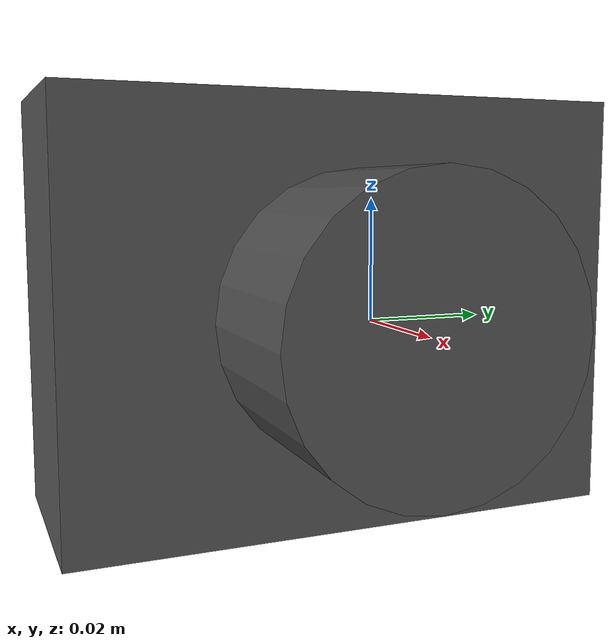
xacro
<?xml version="1.0"?>
<robot name="sensor_camera" xmlns:xacro="http://ros.org/wiki/xacro">

  <xacro:arg name="camera_name" default="camera"/>
  <xacro:property name="camera_name" value="$(arg camera_name)" />

  <!-- Camera is modeled as a cylinder + box -->
  <xacro:macro name="camera_cylinder">
    <origin xyz="0 0 0" rpy="0 ${pi/2} 0" />
    <geometry>
      <cylinder radius="0.025" length="0.05" />
    </geometry>
    <material name="darkgrey">
      <color rgba="0.3 0.3 0.3 1.0"/>
    </material>
  </xacro:macro>
  <xacro:macro name="camera_box">
    <origin xyz="-0.025 0 0" rpy="0 0 0" />
    <geometry>
      <box size="0.04 0.1 0.075" />
    </geometry>
    <material name="darkgrey">
      <color rgba="0.3 0.3 0.3 1.0"/>
    </material>
  </xacro:macro>

  <link name="${camera_name}/camera_root_link" />
  <joint name="${camera_name}/camera_root_joint" type="fixed">
    <parent link="${camera_name}/camera_root_link" />
    <child link="${camera_name}/camera_link" />
  </joint>

  <link name="${camera_name}/camera_link">
    <visual>
      <xacro:camera_cylinder />
    </visual>
    <visual>
      <xacro:camera_box />
    </visual>
    <collision>
      <xacro:camera_cylinder />
    </collision>
    <collision>
      <xacro:camera_box />
    </collision>
    <inertial>
      <mass value="1e-5" />
      <origin xyz="0 0 0" rpy="0 0 0" />
      <inertia ixx="1e-6" ixy="0" ixz="0" iyy="1e-6" iyz="0" izz="1e-6" />
    </inertial>
  </link>

  <joint name="${camera_name}/optical_joint" type="fixed">
    <origin xyz="0 0 0" rpy="0 0 ${-pi/2}" />
    <parent link="${camera_name}/camera_link" />
    <child link="${camera_name}/camera_rgb_optical_frame" />
  </joint>
  <link name="${camera_name}/camera_rgb_optical_frame"/>

  <gazebo reference="${camera_name}/camera_link">
    <sensor type="camera" name="${camera_name}">
      <update_rate>15.0</update_rate>
      <camera name="head">
        <horizontal_fov>1.3962634</horizontal_fov>
        <image>
          <width>800</width>
          <height>800</height>
          <format>R8G8B8</format>
        </image>
        <clip>
          <near>0.02</near>
          <far>300</far>
        </clip>
        <noise>
          <type>gaussian</type>
          <mean>0.0</mean>
          <stddev>0.007</stddev>
        </noise>
      </camera>
      <plugin name="camera_controller" filename="libgazebo_ros_camera.so">
        <alwaysOn>true</alwaysOn>
        <updateRate>0.0</updateRate>
        <cameraName>${camera_name}</cameraName>
        <imageTopicName>image_raw</imageTopicName>
        <cameraInfoTopicName>camera_info</cameraInfoTopicName>
        <frameName>${camera_name}/camera_rgb_optical_frame</frameName>
        <hackBaseline>0.07</hackBaseline>
        <distortionK1>0.0</distortionK1>
        <distortionK2>0.0</distortionK2>
        <distortionK3>0.0</distortionK3>
        <distortionT1>0.0</distortionT1>
        <distortionT2>0.0</distortionT2>
      </plugin>
    </sensor>
    <material>Gazebo/DarkGrey</material>
  </gazebo>
  <gazebo>
    <static>true</static>
  </gazebo>
</robot>
